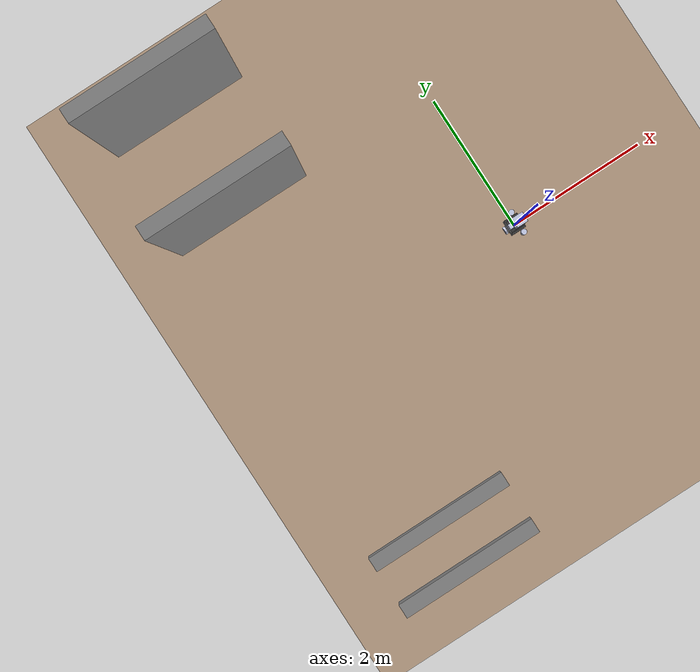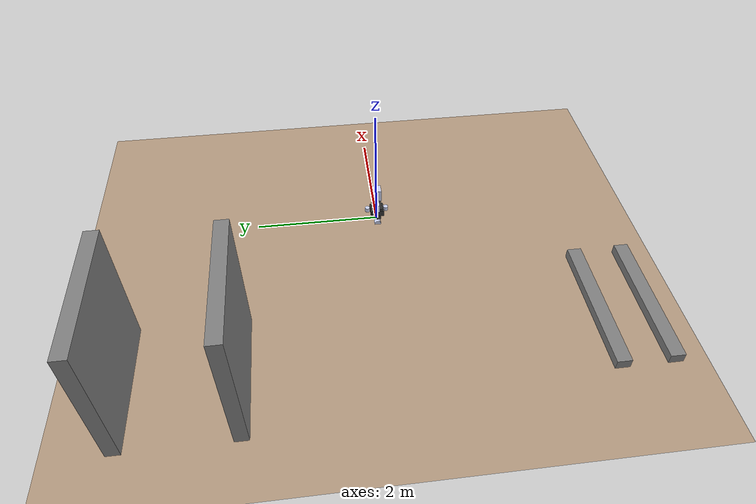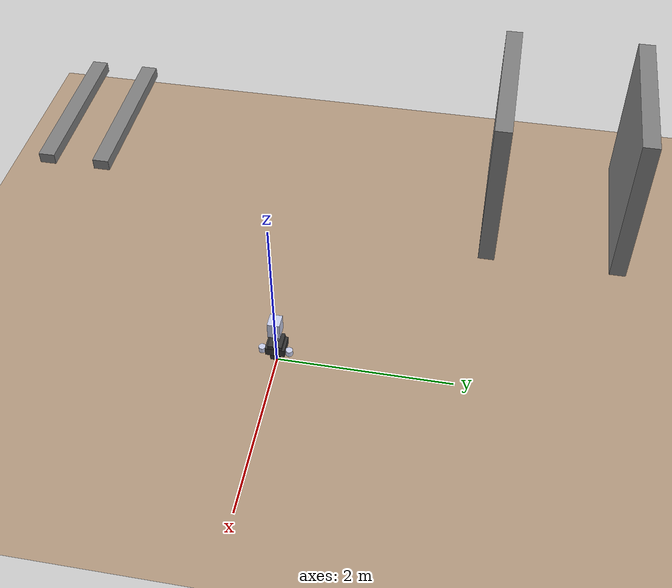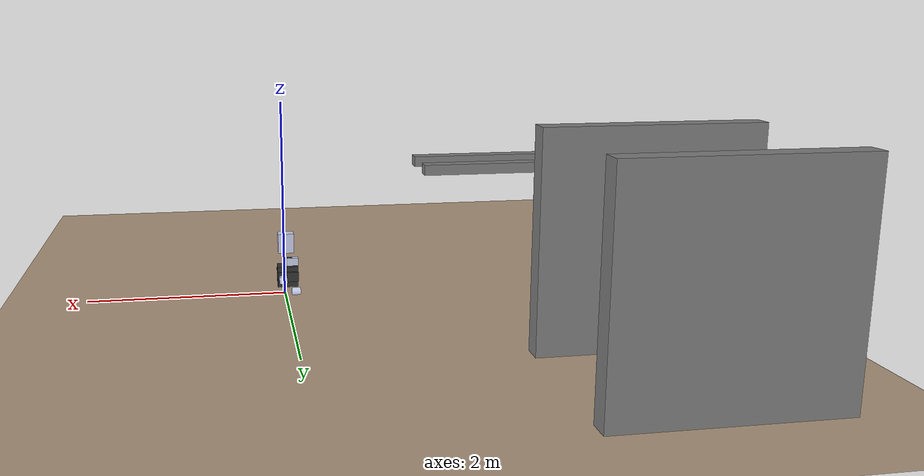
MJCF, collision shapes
<mujoco model="dyros_red_description">
    <compiler angle="radian" meshdir="../meshes/"/>
    <size njmax="500" nconmax="100" />

    <default>

        <joint damping="2.0" frictionloss="0.0"/>

        <motor ctrllimited="true" ctrlrange="-300 300"/>

        <default class="viz">
            <geom contype="0" conaffinity="0" group="1" type="mesh" rgba=".6 .6 .7 1"/>
        </default>

        <!--Since group 2 is collision geom, rendering of group 2 geom is disabled by default in mujoco, but enabling is possible by press '2' on keyboard -->
        <default class="cls">
            <geom group="2" rgba="0.79216 0.81961 0.93333 0.5"/>
        </default>

        <default class="cls_f">
            <geom group="2" rgba="0.79216 0.81961 0.93333 0.1" friction="1 0.005 0.0001"/>
        </default>

        <default class="FTsensor">
            <site type="cylinder" size="0.005 0.005" group="4" rgba=".1 .1 .9 1"/>
        </default>

    </default>

    <option timestep='0.0005' iterations="100" tolerance="1e-11" solver="Newton" jacobian="dense" cone="elliptic" noslip_iterations="75" noslip_tolerance="1e-9"/>

    <visual>
        <quality shadowsize="10000" offsamples="16"/>
        <map stiffness="10" znear="0.05"/>
    </visual>

    <asset>
        <mesh name="Pelvis_link" file="Pelvis_link2.STL" scale="0.001 0.001 0.001"/>
        <mesh name="HipRoll_R_link" file="HipRoll_R_link.STL" />
        <mesh name="HipCenter_R_Link" file="HipCenter_R_Link.STL" />
        <mesh name="Thigh_R_Link" file="Thigh_R_Link.STL" />
        <mesh name="Knee_R_Link" file="Knee_R_Link.STL" />
        <mesh name="AnkleCenter_R_Link" file="AnkleCenter_R_Link.STL" />
        <mesh name="AnkleRoll_R_Link" file="AnkleRoll_R_Link.STL" />
        <mesh name="HipRoll_L_Link" file="HipRoll_L_Link.STL" />
        <mesh name="HipCenter_L_Link" file="HipCenter_L_Link.STL" />
        <mesh name="Thigh_L_Link" file="Thigh_L_Link.STL" />
        <mesh name="Knee_L_Link" file="Knee_L_Link.STL" />
        <mesh name="AnkleCenter_L_Link" file="AnkleCenter_L_Link.STL" />
        <mesh name="AnkleRoll_L_Link" file="AnkleRoll_L_Link.STL" />
        <mesh name="waist1" file="waistyaw.STL" scale="0.001 0.001 0.001"/>
        <mesh name="waist2" file="waist2.STL" />
        <mesh name="upperbody" file="upperbody.STL" />
        <mesh name="R_shoulder1" file="R_shoulder1.STL" />
        <mesh name="R_shoulder2" file="R_shoulder2.STL" />
        <mesh name="R_shoulder3" file="R_shoulder3.STL" />
        <mesh name="R_arm" file="R_arm.STL" />
        <mesh name="R_elbow" file="R_elbow.STL" />
        <mesh name="R_forearm" file="R_forearm.STL" />
        <mesh name="R_wrist1" file="R_wrist1.STL" />
        <mesh name="L_shoulder1" file="L_shoulder1.STL" />
        <mesh name="L_shoulder2" file="L_shoulder2.STL" />
        <mesh name="L_shoulder3" file="L_shoulder3.STL" />
        <mesh name="L_arm" file="L_arm.STL" />
        <mesh name="L_elbow" file="L_elbow.STL" />
        <mesh name="L_forearm" file="L_forearm.STL" />
        <mesh name="L_wrist1" file="L_wrist1.STL" />
        <mesh name="neck" file="neck.STL" />
        <mesh name="head" file="head.STL" />
        <mesh name="hand" file="wrist2joint.STL" scale="0.001 0.001 0.001"/>

        <!--texture type="skybox" builtin="gradient" width="128" height="128" rgb1="1 1 1" rgb2="0 0 0"/-->
        <texture type="skybox" builtin="gradient" width="128" height="128" rgb1="0.4 0.6 0.8" rgb2="0 0 0"/>
        <texture name="texgeom" type="cube" builtin="flat" mark="cross" width="128" height="128" rgb1="0.6 0.6 0.6" rgb2="0.6 0.6 0.6" markrgb="1 1 1"/>
        <texture name="texplane" type="2d" builtin="checker" rgb1=".4 .4 .4" rgb2=".6 .6 .6" width="512" height="512"/>
        <material name='geom' texture="texgeom" texuniform="true"/>
        <material name='MatPlane' reflectance='0.3' texture="texplane" texrepeat="1 1" texuniform="true"/>
        <material name='MatPlane2' reflectance='0.3' />
    </asset>

    <worldbody>
        <geom name="ground" type="plane" pos="0 0 0" size="10 10 .05" rgba="0.7 0.6 0.5 1" material="MatPlane2" group="3"/>

        <!--geom pos="0 0 0" type="plane" size="10 10 .5" rgba=".7 .7 .7 1" material="MatPlane"/-->

        <!--geom name="box" type="box" size="0.5 0.5 0.5" pos="-1.5 0 0.5"/-->
        <!--geom name="box2" type="box" size="0.2 0.2 0.5" pos="-1.5 0 1.2"/-->
        <geom name="wall1" type="box" size="1 0.1 1" pos="-3 3.8 1"/>
        <geom name="wall2" type="box" size="1 0.1 1" pos="-3 2.2 1"/>

        <geom name="wall3" type="box" size="1 0.1 0.068" pos="-3 -3.35 0.8"/>
        <geom name="wall4" type="box" size="1 0.1 0.068" pos="-3 -2.65 0.8"/>
        <light directional="true" diffuse=".8 .8 .8" pos="0 0 10" dir="0 0 -10"/>
        <light directional="true" diffuse=".5 .5 .5" pos="10 0 0" dir="-10 0 0"/>
        <!--light mode='targetbodycom' target='base_link' directional='false' diffuse='.8 .8 .8' specular='0.8 0.8 0.8' pos='0 0 10.0' dir='0 0 -1'/-->

                    <body name="Upperbody_Link" pos="0 0 0">
                        <inertial pos="-0.04733 0 0.16266" quat="0.991857 0 -0.127356 0" mass="16.4339" diaginertia="0.274087 0.242243 0.173295" />
            		<joint name="virtual_joint" type="free" limited='false' frictionloss="0" damping="0" stiffness="0" armature="0"/>
                        <geom class="viz" rgba="0.85938 0.07813 0.23438 1" mesh="upperbody" />
                        <geom size="0.105 0.11 0.05" pos="-0.03 0 0.2" type="box" rgba="0.20313 0.20313 0.20313 1" group="1"/>
                        <geom size="0.105 0.08 0.025" pos="-0.03 0 0.275" type="box" rgba="0.20313 0.20313 0.20313 1" group="1"/>
                        <geom size="0.105 0.055 0.035" pos="-0.03 0 0.115" type="box" rgba="0.20313 0.20313 0.20313 1" group="1"/>
                        <geom size="0.04 0.022 0.07" pos="-0.04 0 0.31" type="box" rgba="0.20313 0.20313 0.20313 1" group="1" />

                        <geom size="0.105 0.11 0.05" pos="-0.03 0 0.2" type="box" contype="0" conaffinity="0" class="cls"/>
                        <geom size="0.105 0.08 0.025" pos="-0.03 0 0.275" type="box" contype="0" conaffinity="0" class="cls"/>
                        <geom size="0.105 0.055 0.035" pos="-0.03 0 0.115" type="box" contype="0" conaffinity="0" class="cls"/>

                        <geom size="0.06 0.035 0.07" pos="-0.08 0 0.31" type="box" class="cls" />
                        <geom size="0.054 0.045" pos="-0.115 0 0" quat="0.707107 0 0.707107 0" type="cylinder" class="cls" />
                        <geom size="0.04 0.035" pos="0.023 0.154 0.185" type="cylinder" class="cls" />
                        <geom size="0.04 0.035" pos="0.023 -0.154 0.185" type="cylinder" class="cls" />

                        <geom class="viz" rgba="0.20313 0.20313 0.20313 1" pos="-0.036 0 0.3795" mesh="neck" />
                        <geom class="viz" rgba="0.85938 0.07813 0.23438 1" pos="-0.036 0 0.407" mesh="head" />
                        <geom class="cls" size="0.08 0.07 0.1" type="box" pos="-0.016 0 0.547"/>
                        <camera name="Head camera" euler="0 -1.5708 -1.5708" fovy="80" pos="0.084 0 0.647"/>

                    </body>

    </worldbody>

</mujoco>
